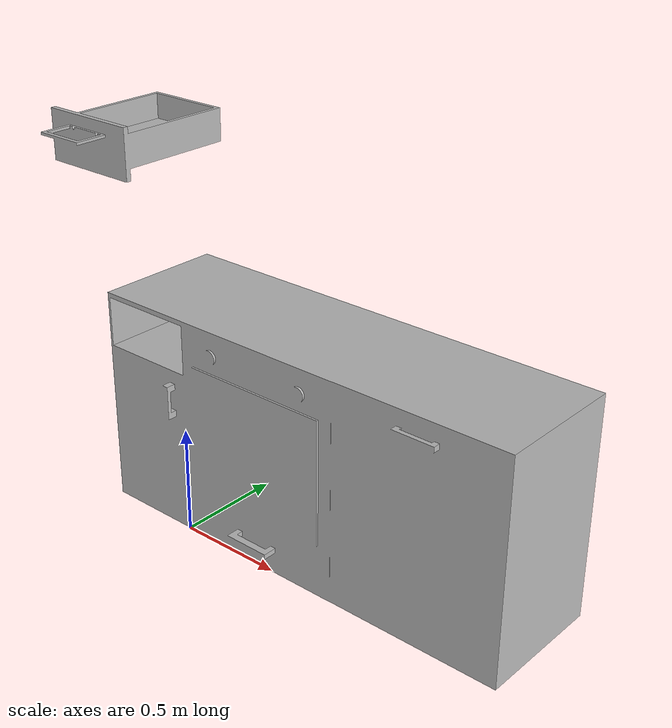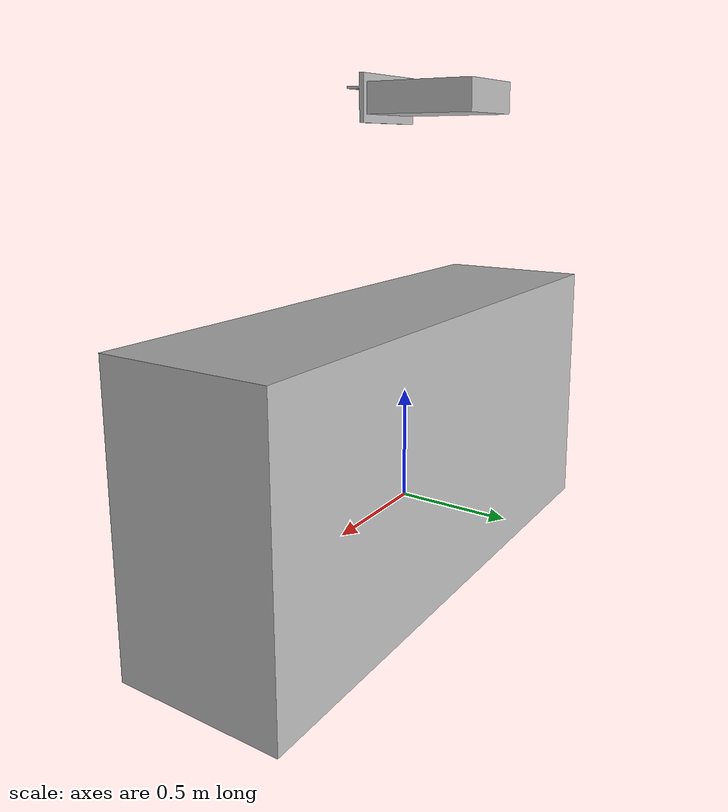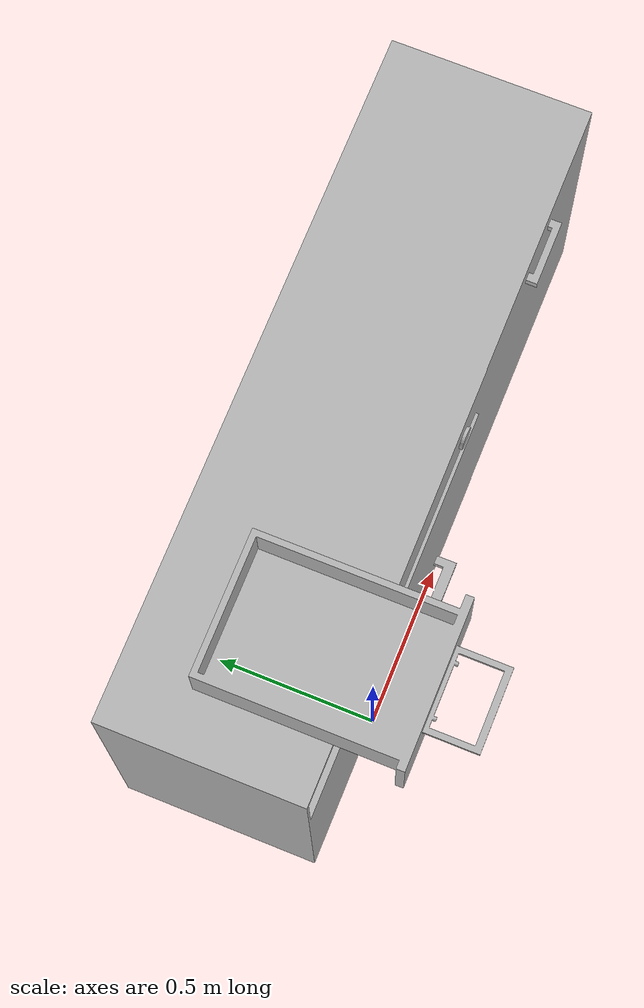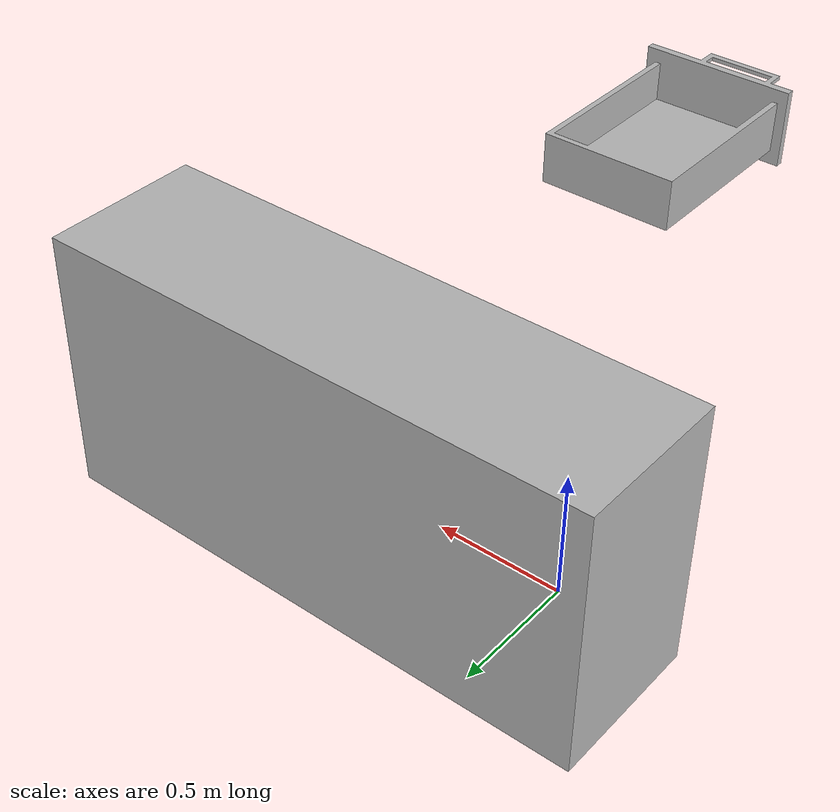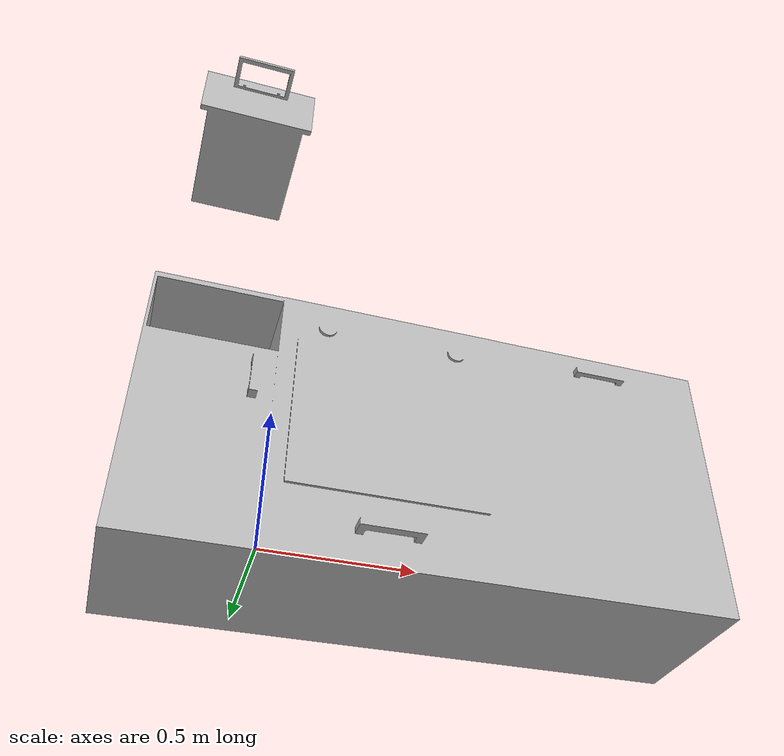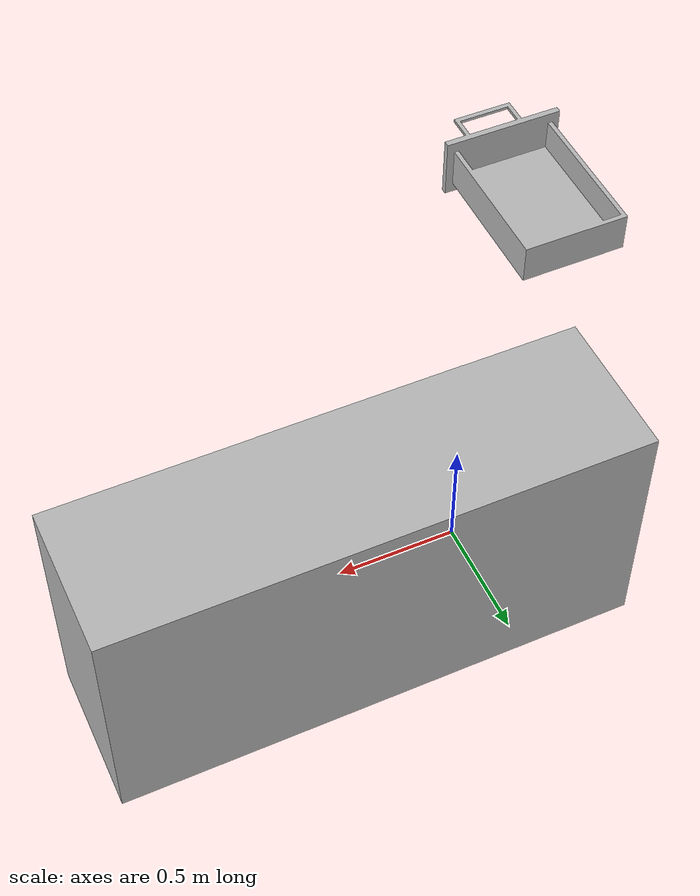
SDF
<?xml version='1.0' encoding='utf-8'?>
<sdf version="1.7">
    <model name="cabinet_with_drawer">
    <pose>0 0 0 0 0 0</pose>

        <link name="kitchen">
            <pose>0 0 0 0 0 0</pose>
            <inertial>
              <inertia>
                <ixx>2.501</ixx>
                <ixy>0</ixy>
                <ixz>0</ixz>
                <iyy>2.501</iyy>
                <iyz>0</iyz>
                <izz>5</izz>
              </inertia>
              <mass>120.0</mass>
          </inertial>
            <visual name="kitchen_visual">
                <geometry>
                    <mesh>
                     <uri>model://kitchen/meshes/kitchen.dae</uri>
                     <scale>1 1 1</scale>
                    </mesh>
                </geometry>
            </visual>
            <collision name="cabinet_collision">
                <geometry>
                    <mesh>
                     <uri>model://kitchen/meshes/kitchen.dae</uri>
                     <scale>1 1 1</scale>
                    </mesh>
                </geometry>
            </collision>
        </link>

        <joint name="world_fixed" type="fixed">
        <parent>world</parent>
        <child>kitchen</child>
        </joint>

        <link name="drawer">
            <pose>0.013 -0.23 0.9 0 0 0</pose>
            <inertial>
              <inertia>
                <ixx>0.201</ixx>
                <ixy>0</ixy>
                <ixz>0</ixz>
                <iyy>0.201</iyy>
                <iyz>0</iyz>
                <izz>0.5</izz>
              </inertia>
              <mass>2.0</mass>
          </inertial>
            <visual name="drawer_visual">
                <geometry>
                    <mesh>
                     <uri>model://kitchen/meshes/drawer.dae</uri>
                     <scale>1 1 1</scale>
                    </mesh>
                </geometry>
            </visual>
            <collision name="drawer_collision">
                <geometry>
                    <mesh>
                     <uri>model://kitchen/meshes/drawer.dae</uri>
                     <scale>1 1 1</scale>
                    </mesh>
                </geometry>
            </collision>
        </link>

        <joint name="drawer_joint" type="prismatic">
        <child>drawer</child>
        <parent>kitchen</parent>
        <axis>
          <limit>
            <lower>-0.6</lower>
            <upper>0</upper>
          </limit>
          <xyz>0 1 0</xyz>
        </axis>
       </joint>

    </model>
</sdf>
